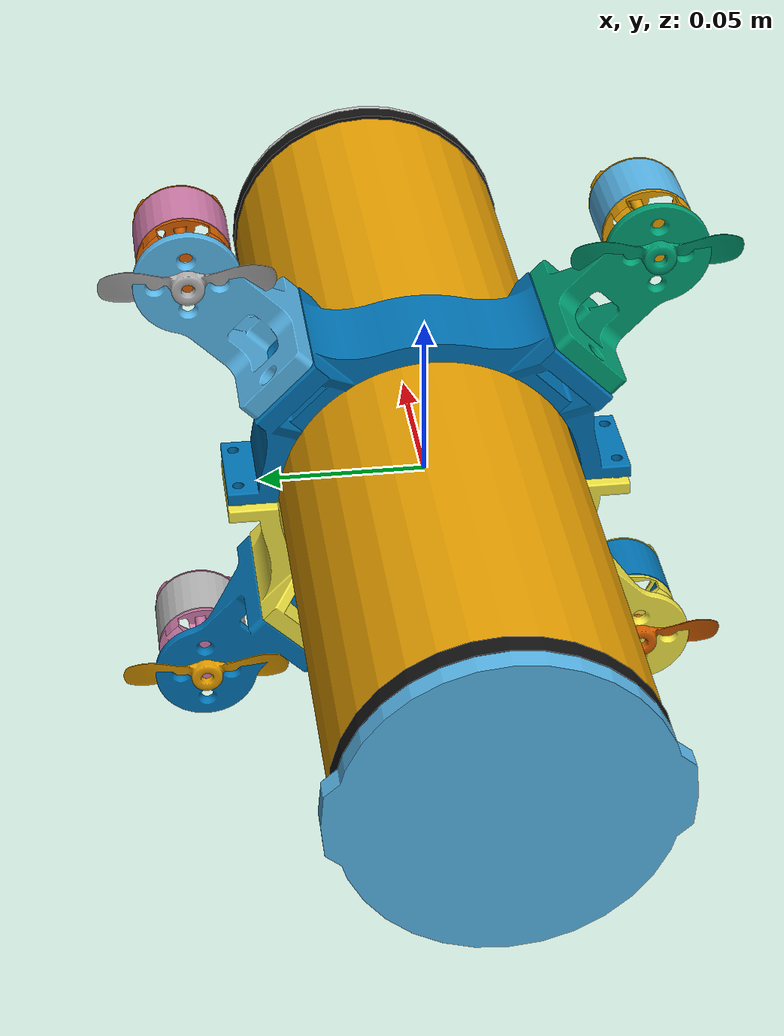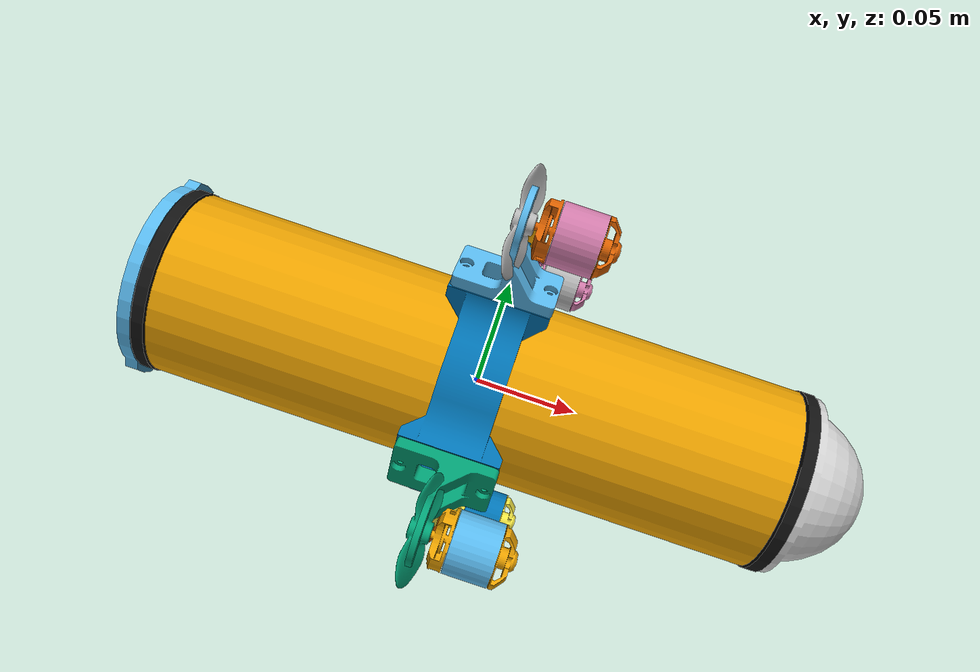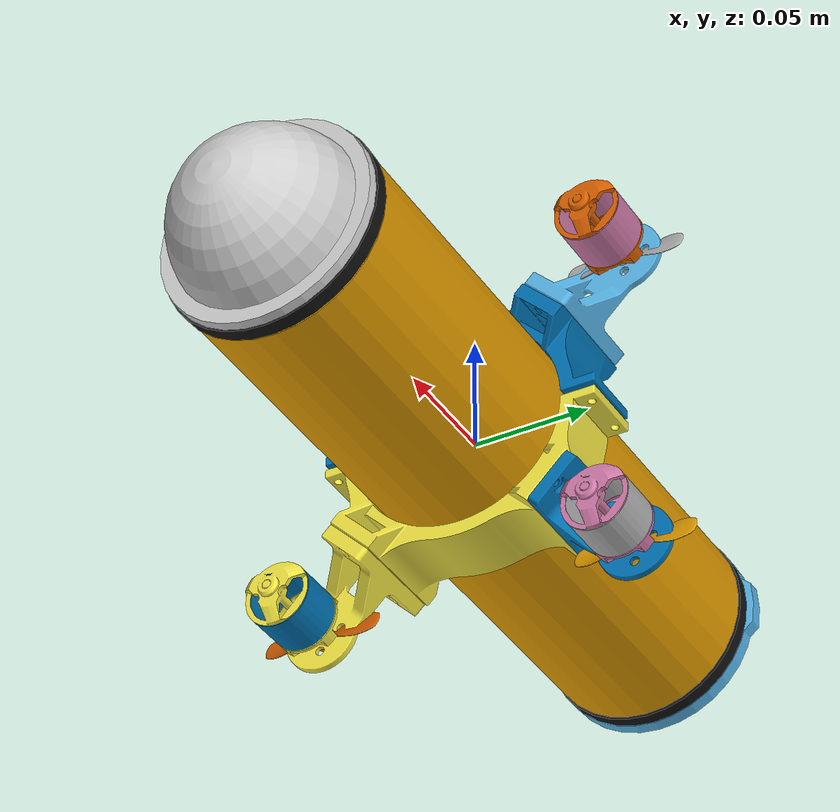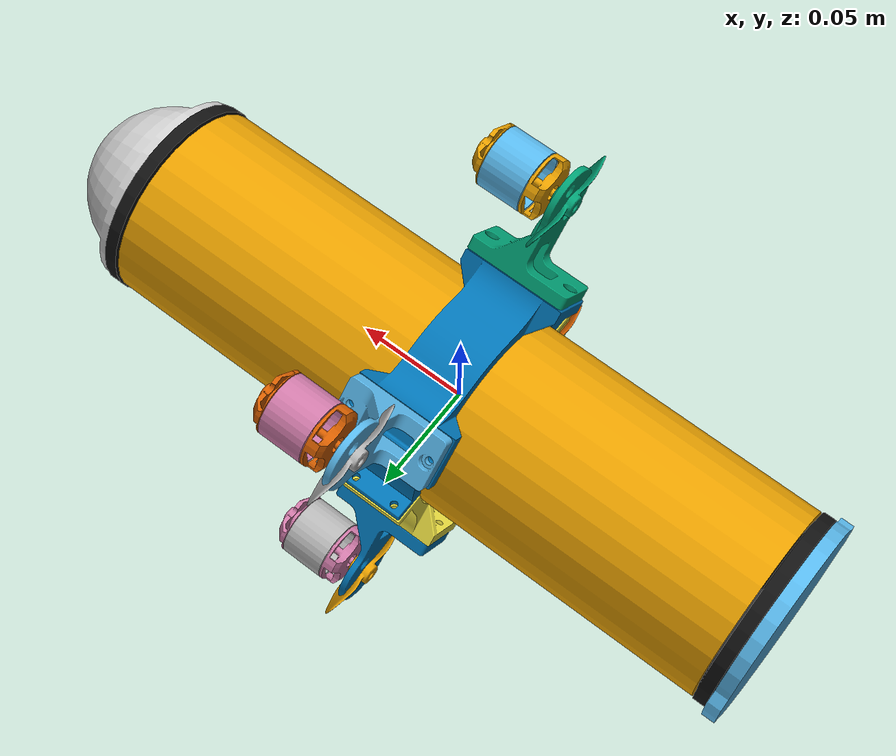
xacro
<?xml version="1.0"?>
<robot xmlns:xacro="http://www.ros.org/wiki/xacro" name="hippocampus">
    <xacro:include filename="$(find hippo_sim)/models/common/urdf/common.xacro" />
    <xacro:include filename="$(find hippo_sim)/models/hippo3/urdf/hippo3_params.xacro" />
    <xacro:include filename="$(find hippo_sim)/models/thruster/urdf/thruster_macro.xacro" />
    <xacro:include filename="$(find hippo_sim)/models/hippo3/urdf/clamp_macro.xacro" />
    <xacro:include filename="$(find hippo_sim)/models/hippo3/urdf/mount_macro.xacro" />
    <xacro:include filename="$(find hippo_sim)/models/camera/urdf/camera_macro.xacro" />

    <xacro:property name="thruster_xy" value="${thruster_r / 2**0.5}" />
    <gazebo>
        <static>false</static>
    </gazebo>
    <link name="base_link">
        <inertial>
            <mass value="${base_mass}" />
            <inertia ixx="${ixx}" ixy="0.0" ixz="0.0" iyy="${iyy}" iyz="0.0" izz="${izz}" />
        </inertial>
        <visual>
            <geometry>
                <mesh filename="$(find hippo_sim)/models/hippo3/meshes/tube.dae" />
            </geometry>
        </visual>
    </link>

    <link name="flange_link">
        <inertial>
            <mass value="1e-5" />
            <inertia ixx="1e-5" ixy="0.0" ixz="0.0" iyy="1e-5" iyz="0.0" izz="1e-5" />
        </inertial>
        <visual>
            <geometry>
                <mesh filename="$(find hippo_sim)/models/hippo3/meshes/flange.dae" />
            </geometry>
        </visual>
    </link>
    <joint name="flange_joint" type="fixed">
        <parent link="base_link" />
        <child link="flange_link" />
    </joint>

    <link name="dome_link">
        <inertial>
            <mass value="1e-5" />
            <inertia ixx="1e-5" ixy="0.0" ixz="0.0" iyy="1e-5" iyz="0.0" izz="1e-5" />
        </inertial>
        <visual>
            <geometry>
                <mesh filename="$(find hippo_sim)/models/hippo3/meshes/dome.dae" />
            </geometry>
        </visual>
    </link>
    <joint name="dome_joint" type="fixed">
        <parent link="base_link" />
        <child link="dome_link" />
    </joint>

    <gazebo reference="flange_joint">
        <preserveFixedJoint>true</preserveFixedJoint>
    </gazebo>

    <gazebo reference="dome_joint">
        <preserveFixedJoint>true</preserveFixedJoint>
    </gazebo>

    <xacro:clamp parent="base_link" suffix="clamp_lower" xyz="0 0 0" rpy="${radians(90)} 0 0" />
    <xacro:clamp parent="base_link" suffix="clamp_upper" xyz="0 0 0" rpy="${radians(-90)} 0 0" />

    <gazebo reference="base_link">
        <sensor name="imu_sensor" type="imu">
            <always_on>1</always_on>
            <visualize>true</visualize>
            <topic>$(arg vehicle_name)/imu</topic>
        </sensor>
        <visual>
            <material>
                <ambient>0.5 0.5 0.9 0.2</ambient>
                <diffuse>0.5 0.5 0.9 0.5</diffuse>
                <specular>1 1 1 1</specular>
            </material>
        </visual>
    </gazebo>

    <gazebo reference="flange_link">
        <visual>
            <material>
                <ambient>1 1 1 1</ambient>
                <diffuse>1 1 1 1</diffuse>
                <specular>1 1 1 1</specular>
                <pbr>
                    <metal>
                        <metalness>1</metalness>
                        <roughness>0.5</roughness>
                        <environment_map>$(find hippo_sim)/models/common/textures/env_map.dds</environment_map>
                        <albedo_map>$(find hippo_sim)/models/common/textures/dark_grey.png</albedo_map>
                    </metal>
                </pbr>
            </material>
        </visual>
    </gazebo>

    <gazebo reference="dome_link">
        <visual>
            <material>
                <ambient>0.5 0.5 0.9 0.2</ambient>
                <diffuse>0.5 0.5 0.9 0.5</diffuse>
                <specular>1 1 1 1</specular>
            </material>
        </visual>
    </gazebo>

    <xacro:thruster parent="base_link" suffix="port_top" xyz="0 ${thruster_r / 2**0.5} ${thruster_r / 2**0.5}" rpy="0 0 0" turning_direction="ccw" propeller_direction="ccw" color="red" number="0" />
    <xacro:thruster parent="base_link" suffix="starboard_top" xyz="0 -${thruster_r / 2**0.5} ${thruster_r / 2**0.5}" rpy="0 0 0" turning_direction="ccw" propeller_direction="cw" color="green" number="1" />
    <xacro:thruster parent="base_link" suffix="starboard_bot" xyz="0 -${thruster_r / 2**0.5} -${thruster_r / 2**0.5}" rpy="0 0 0" turning_direction="ccw" propeller_direction="ccw" color="grey" number="2" />
    <xacro:thruster parent="base_link" suffix="port_bot" xyz="0 ${thruster_r / 2**0.5} -${thruster_r / 2**0.5}" rpy="0 0 0" turning_direction="cw" propeller_direction="ccw" color="grey" number="3" />

    <xacro:mount parent="base_link" suffix="port_top" xyz="0 ${thruster_r / 2**0.5} ${thruster_r / 2**0.5}" rpy="${radians(-45)} 0 0" />
    <xacro:mount parent="base_link" suffix="starboard_top" xyz="0 -${thruster_r / 2**0.5} ${thruster_r / 2**0.5}" rpy="${radians(45)} 0 0" />
    <xacro:mount parent="base_link" suffix="starboard_bot" xyz="0 -${thruster_r / 2**0.5} -${thruster_r / 2**0.5}" rpy="${radians(135)} 0 0" />
    <xacro:mount parent="base_link" suffix="port_bot" xyz="0 ${thruster_r / 2**0.5} -${thruster_r / 2**0.5}" rpy="${radians(-135)} 0 0" />

    <xacro:camera_macro parent="base_link" prefix="vertical_camera" xyz="${camera_position}" rpy="0 ${radians(90)} 0" />

    <gazebo>
        <plugin filename="buoyancy" name="hippo_gz_plugins::buoyancy">
            <buoyancy>
                <link_name>base_link</link_name>
                <origin>0 0 0.01</origin>
                <force_added>0</force_added>
                <compensation>1.01</compensation>
                <height_scale_limit>0.1</height_scale_limit>
            </buoyancy>
        </plugin>

        <plugin filename="hydrodynamics" name="hippo_gz_plugins::hydrodynamics">
            <hydrodynamics>
                <link>base_link</link>
                <added_mass_linear>${added_mass_linear}</added_mass_linear>
                <added_mass_angular>${added_mass_angular}</added_mass_angular>
                <damping_linear>${damping_linear}</damping_linear>
                <damping_angular>${damping_angular}</damping_angular>
            </hydrodynamics>
        </plugin>

        <plugin filename="pose" name="hippo_gz_plugins::pose">
            <link>base_link</link>
            <update_rate>50.0</update_rate>
            <base_topic>ground_truth/pose</base_topic>
        </plugin>

        <plugin filename="odometry" name="hippo_gz_plugins::odometry">
            <link>base_link</link>
            <update_rate>50.0</update_rate>
            <base_topic>ground_truth/odometry</base_topic>
        </plugin>

        <plugin filename="barometer" name="hippo_gz_plugins::barometer">
            <link>base_link</link>
            <update_rate>100.0</update_rate>
            <base_topic>pressure</base_topic>
            <atmospheric_pressure>101325.0</atmospheric_pressure>
            <water_surface_offset>0.0</water_surface_offset>
            <position>-0.15 0 0</position>
        </plugin>

    </gazebo>
</robot>

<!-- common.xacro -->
<robot xmlns:xacro="http://www.ros.org/wiki/xacro">
    <xacro:macro name="zero_inertia">
        <inertial>
            <mass value="1e-5" />
            <inertia ixx="1e-5" ixy="0.0" ixz="0.0" iyy="1e-5" iyz="0.0" izz="1e-5" />
        </inertial>
    </xacro:macro>
    <xacro:arg name="vehicle_name" default="this_shoud_be_replaced_by_your_vehicle_name" />
</robot>

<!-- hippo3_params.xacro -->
<robot xmlns:xacro="http://www.ros.org/wiki/xacro">
    <xacro:property name="base_mass" value="2.31" />
    <xacro:property name="ixx" value="0.0024" />
    <xacro:property name="iyy" value="0.010717" />
    <xacro:property name="izz" value="0.010717" />
    <xacro:property name="thruster_r" value="0.097" />
    <xacro:property name="added_mass_linear" value="1.11 2.8 2.8" />
    <xacro:property name="added_mass_angular" value="0.00451 0.0163 0.0163"/>
    <xacro:property name="damping_linear" value="5.39 17.36 17.36"/>
    <xacro:property name="damping_angular" value="0.00174 0.007 0.007"/>
    <xacro:property name="camera_position" value="-0.1, 0.0 -0.03" />
</robot>

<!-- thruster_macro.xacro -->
<robot xmlns:xacro="http://www.ros.org/wiki/xacro">
    <xacro:macro name="thruster" params="model:='generic' suffix parent xyz rpy turning_direction propeller_direction color number">

        <xacro:property name="mount_link" value="${suffix}_thruster_mount_link" />
        <xacro:property name="mount_joint" value="${suffix}_thruster_mount_joint" />
        <xacro:property name="hull_link" value="${suffix}_thruster_hull_link" />
        <xacro:property name="hull_joint" value="${suffix}_thruster_hull_joint" />
        <xacro:property name="propeller_link" value="${suffix}_thruster_propeller_link" />
        <xacro:property name="propeller_joint" value="${suffix}_thruster_propeller_joint" />

        <xacro:if value="${model == 'generic'}">
            <xacro:include filename="$(find hippo_sim)/models/thruster/urdf/thruster_params.xacro" />
            <link name="${mount_link}">
                <origin xyz="0 0 0" rpy="0 0 0" />
                <inertial>
                    <mass value="${thruster_mass}" />
                    <inertia ixx="${thruster_ixx}" ixy="0.0" ixz="0.0" iyy="${thruster_iyy}" iyz="0.0" izz="${thruster_izz}" />
                </inertial>
                <visual>
                    <geometry>
                        <mesh filename="$(find hippo_sim)/models/thruster/meshes/motor_mount.dae" />
                    </geometry>
                </visual>
            </link>
            <gazebo reference="${mount_link}">
                <visual>
                    <material>

                        <ambient>1 1 1 1</ambient>
                        <diffuse>1 1 1 1</diffuse>
                        <specular>1 1 1 1</specular>
                        <pbr>
                            <metal>
                                <metalness>1</metalness>
                                <roughness>0.5</roughness>
                                <environment_map>$(find hippo_sim)/models/common/textures/env_map.dds</environment_map>
                                <albedo_map>$(find hippo_sim)/models/common/textures/grey.png</albedo_map>
                            </metal>
                        </pbr>
                    </material>
                </visual>
            </gazebo>
            <joint name="${mount_joint}" type="fixed">
                <axis xyz="1 0 0" />
                <origin xyz="${xyz}" rpy="${rpy}" />
                <parent link="${parent}" />
                <child link="${mount_link}" />
            </joint>
            <gazebo reference="${mount_joint}">
                <disableFixedJointLumping>true</disableFixedJointLumping>
                <preserveFixedJoint>true</preserveFixedJoint>
            </gazebo>

            <link name="${hull_link}">
                <origin xyz="0 0 0" rpy="0 0 0" />
                <inertial>
                    <mass value="${thruster_mass}" />
                    <inertia ixx="${thruster_ixx}" ixy="0.0" ixz="0.0" iyy="${thruster_iyy}" iyz="0.0" izz="${thruster_izz}" />
                </inertial>
                <visual>
                    <geometry>
                        <mesh filename="$(find hippo_sim)/models/thruster/meshes/motor_hull.dae" />
                    </geometry>
                </visual>
            </link>
            <gazebo reference="${hull_link}">
                <visual>
                    <material>

                        <ambient>1 1 1 1</ambient>
                        <diffuse>1 1 1 1</diffuse>
                        <specular>1 1 1 1</specular>
                        <pbr>
                            <metal>
                                <metalness>1</metalness>
                                <roughness>0.5</roughness>
                                <environment_map>$(find hippo_sim)/models/common/textures/env_map.dds</environment_map>
                                <albedo_map>$(find hippo_sim)/models/thruster/textures/hippocampus_text.png</albedo_map>
                            </metal>
                        </pbr>
                    </material>
                </visual>
            </gazebo>
            <joint name="${hull_joint}" type="continuous">
                <axis xyz="1 0 0" />
                <origin xyz="${xyz}" rpy="${rpy}" />
                <parent link="${parent}" />
                <child link="${hull_link}" />
            </joint>
        </xacro:if>

        <xacro:if value="${model == 't200'}">
            <xacro:include filename="$(find hippo_sim)/models/thruster/urdf/t200_params.xacro" />
        </xacro:if>

        <link name="${propeller_link}">
            <origin xyz="0 0 0" rpy="0 0 0" />
            <inertial>
                <mass value="${thruster_mass}" />
                <inertia ixx="${thruster_ixx}" ixy="0.0" ixz="0.0" iyy="${thruster_iyy}" iyz="0.0" izz="${thruster_izz}" />
            </inertial>
            <visual>
                <geometry>
                    <mesh filename="${propeller_mesh}" />
                </geometry>
            </visual>
        </link>
        <gazebo>
            <plugin filename="thruster" name="hippo_gz_plugins::thruster">
                <link>${propeller_link}</link>
                <joint>${propeller_joint}</joint>
                <publish_rate>50.0</publish_rate>
                <throttle_cmd_base_topic>throttle_cmd</throttle_cmd_base_topic>
                <rpm_base_topic>rpm</rpm_base_topic>
                <thrust_base_topic>thrust</thrust_base_topic>
                <thruster_number>${number}</thruster_number>
                <turning_direction>${turning_direction}</turning_direction>
                <propeller_direction>${propeller_direction}</propeller_direction>
                <maximum_rpm>${max_rpm}</maximum_rpm>
                <rpm_scaler>${rpm_scaler}</rpm_scaler>
                <torque_coeff>${torque_constant}</torque_coeff>
                <linear_coeff>${thrust_linear_coeff}</linear_coeff>
                <constant_coeff>${thrust_constant_coeff}</constant_coeff>
                <quadratic_coeff>${thrust_quadratic_coeff}</quadratic_coeff>
                <timeconstant_up>${timeconstant_up}</timeconstant_up>
                <timeconstant_down>${timeconstant_down}</timeconstant_down>
            </plugin>
        </gazebo>
        <gazebo reference="${propeller_link}">
            <visual>
                <material>

                    <ambient>1 1 1 1</ambient>
                    <diffuse>1 1 1 1</diffuse>
                    <specular>1 1 1 1</specular>
                    <pbr>
                        <metal>
                            <metalness>1</metalness>
                            <roughness>0.3</roughness>
                            <environment_map>$(find hippo_sim)/models/common/textures/env_map.dds</environment_map>
                            <albedo_map>$(find hippo_sim)/models/common/textures/${color}.png</albedo_map>
                        </metal>
                    </pbr>
                </material>
            </visual>
        </gazebo>
        <joint name="${propeller_joint}" type="continuous">
            <axis xyz="1 0 0" />
            <origin xyz="${xyz}" rpy="${rpy}" />
            <parent link="${parent}" />
            <child link="${propeller_link}" />
        </joint>
    </xacro:macro>
</robot>

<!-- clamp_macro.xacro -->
<robot xmlns:xacro="http://www.ros.org/wiki/xacro">
    <xacro:macro name="clamp" params="suffix parent xyz rpy">
        <xacro:property name="link" value="${suffix}_link" />
        <xacro:property name="joint" value="${suffix}_joint" />
        <link name="${link}">
            <inertial>
                <mass value="1e-5" />
                <inertia ixx="1e-5" ixy="0.0" ixz="0.0" iyy="1e-5" iyz="0.0" izz="1e-5" />
            </inertial>
            <visual>
                <geometry>
                    <mesh filename="$(find hippo_sim)/models/hippo3/meshes/motor_clamp.dae" />
                </geometry>
            </visual>
        </link>
        <joint name="${joint}" type="fixed">
            <origin xyz="${xyz}" rpy="${rpy}" />
            <parent link="${parent}" />
            <child link="${link}" />
        </joint>
        <gazebo reference="${joint}">
            <preserveFixedJoint>true</preserveFixedJoint>
        </gazebo>

        <gazebo reference="${link}">
            <visual>
                <material>

                    <ambient>1 1 1 1</ambient>
                    <diffuse>1 1 1 1</diffuse>
                    <specular>1 1 1 1</specular>
                    <pbr>
                        <metal>
                            <metalness>1</metalness>
                            <roughness>0.5</roughness>
                            <environment_map>$(find hippo_sim)/models/common/textures/env_map.dds</environment_map>
                            <albedo_map>$(find hippo_sim)/models/common/textures/dark_grey.png</albedo_map>
                        </metal>
                    </pbr>
                </material>
            </visual>
        </gazebo>
    </xacro:macro>
</robot>

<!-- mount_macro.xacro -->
<robot xmlns:xacro="http://www.ros.org/wiki/xacro">
    <xacro:macro name="mount" params="suffix parent xyz rpy">
        <xacro:property name="link" value="${suffix}_mount_link" />
        <xacro:property name="joint" value="${suffix}_mount_joint" />
        <link name="${link}">
            <inertial>
                <mass value="1e-5" />
                <inertia ixx="1e-5" ixy="0.0" ixz="0.0" iyy="1e-5" iyz="0.0" izz="1e-5" />
            </inertial>
            <visual>
                <geometry>
                    <mesh filename="$(find hippo_sim)/models/hippo3/meshes/motor_mount.dae" />
                </geometry>
            </visual>
        </link>
        <joint name="${joint}" type="fixed">
            <origin xyz="${xyz}" rpy="${rpy}" />
            <parent link="${parent}" />
            <child link="${link}" />
        </joint>
        <gazebo reference="${joint}">
            <preserveFixedJoint>true</preserveFixedJoint>
        </gazebo>

        <gazebo reference="${link}">
            <visual>
                <material>

                    <ambient>1 1 1 1</ambient>
                    <diffuse>1 1 1 1</diffuse>
                    <specular>1 1 1 1</specular>
                    <pbr>
                        <metal>
                            <metalness>1</metalness>
                            <roughness>0.5</roughness>
                            <environment_map>$(find hippo_sim)/models/common/textures/env_map.dds</environment_map>
                            <albedo_map>$(find hippo_sim)/models/common/textures/blue.png</albedo_map>
                        </metal>
                    </pbr>
                </material>
            </visual>
        </gazebo>
    </xacro:macro>
</robot>

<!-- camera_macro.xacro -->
<robot xmlns:xacro="http://www.ros.org/wiki/xacro">
    <xacro:macro name="camera_macro" params="prefix parent xyz rpy">
        <xacro:include filename="$(find hippo_sim)/models/common/urdf/common.xacro" />
        <xacro:include filename="$(find hippo_sim)/models/camera/urdf/camera_params.xacro" />
        <xacro:property name="link" value="${prefix}_link" />
        <xacro:property name="joint" value="${prefix}_joint" />

        <link name="${link}">
            <xacro:zero_inertia />
            <visual>
                <origin rpy="0 ${radians(90)} 0" />
                <geometry>
                    <cylinder radius="0.02" length="0.01" />
                </geometry>
            </visual>
        </link>

        <joint name="${joint}" type="fixed">
            <origin xyz="${xyz}" rpy="${rpy}" />
            <parent link="${parent}" />
            <child link="${link}" />
        </joint>
        <gazebo reference="${link}">
            <disableFixedJointLumping>true</disableFixedJointLumping>
            <preserveFixedJoint>true</preserveFixedJoint>
        </gazebo>

        <gazebo reference="${link}">
            <visual>
                <material>
                    <ambient>0.5 0.25 1 1</ambient>
                    <diffuse>1 0.5 1 1</diffuse>
                    <specular>1 1 1 1</specular>
                </material>
            </visual>
            <sensor name="${prefix}" type="camera">
                <camera>
                    <horizontal_fov>${horizontal_fov}</horizontal_fov>
                    <image>
                        <width>${width}</width>
                        <height>${height}</height>
                    </image>
                    <clip>
                        <near>0.05</near>
                        <far>10</far>
                    </clip>
                </camera>
                <always_on>1</always_on>
                <update_rate>30</update_rate>
                <visualize>true</visualize>
                <topic>$(arg vehicle_name)/${prefix}</topic>
            </sensor>
        </gazebo>

    </xacro:macro>
</robot>

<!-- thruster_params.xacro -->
<robot xmlns:xacro="http://www.ros.org/wiki/xacro">
    <xacro:property name="thruster_mass" value="1e-5" />
    <xacro:property name="thruster_ixx" value="1e-6" />
    <xacro:property name="thruster_iyy" value="1e-6" />
    <xacro:property name="thruster_izz" value="1e-6" />
    <xacro:property name="thrust_quadratic_coeff" value="3.313e-3" />
    <xacro:property name="thrust_linear_coeff" value="0.1086" />
    <xacro:property name="thrust_constant_coeff" value="-0.8576" />
    <!-- Throttle = f(revs/s) -->
    <xacro:property name="velocity_quadratic_coeff" value="1.2679e-4"/>
    <xacro:property name="velocity_linear_coeff" value="1.1105e-2"/>
    <xacro:property name="velocity_constant_coeff" value="0.0"/>

    <xacro:property name="torque_constant" value="1e-2" />
    <xacro:property name="rpm_scaler" value="1" />
    <xacro:property name="max_rpm" value="3000" />
    <xacro:property name="timeconstant_up" value="0.00" />
    <xacro:property name="timeconstant_down" value="0.00" />

    <xacro:property name="propeller_mesh" value="$(find hippo_sim)/models/thruster/meshes/propeller.dae" />
</robot>
